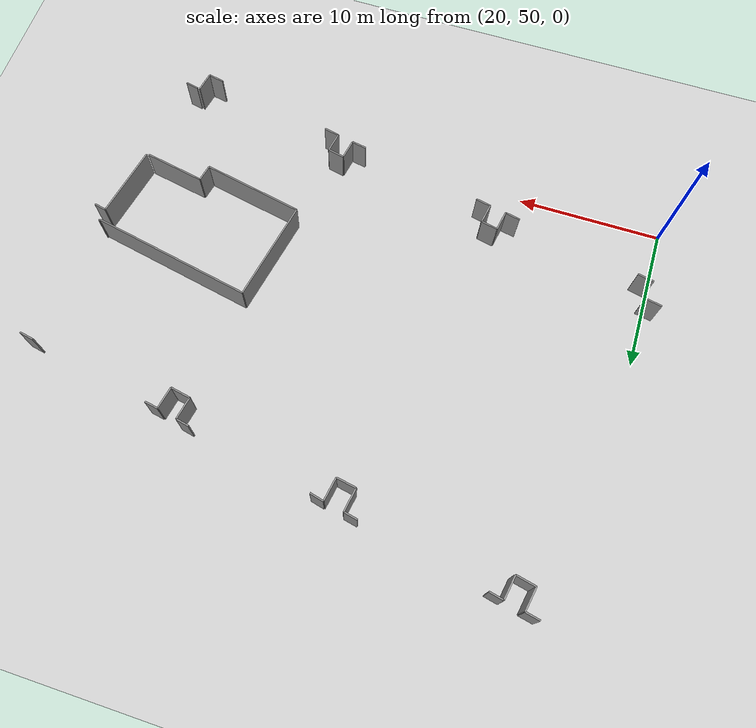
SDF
<sdf version="1.6">
 <world name="default">
  <model name="ground_plane">
   <static>1</static>
   <link name="link">
    <collision name="collision">
     <geometry><plane><normal>0 0 1</normal><size>100 100</size></plane></geometry>
     <surface><friction><ode><mu>100</mu><mu2>50</mu2></ode></friction></surface>
    </collision>
    <visual name="visual">
     <cast_shadows>0</cast_shadows>
     <geometry><plane><normal>0 0 1</normal><size>100 100</size></plane></geometry>
     <material>
      <script><uri>file://media/materials/scripts/gazebo.material</uri><name>Gazebo/Grey</name></script>
     </material>
    </visual>
   </link>
  </model>
  <model name="0510045926_A-40">
   <static>1</static>
   <link name="Wall_411">
    <collision name="Wall_411_Collision">
     <geometry><box><size>0.992644939321 0.1 2.5</size></box></geometry>
     <pose>0.49632246966 0 1.25 0 0 0</pose>
    </collision>
    <visual name="Wall_411_Visual">
     <pose>0.49632246966 0 1.25 0 0 0</pose>
     <geometry><box><size>0.992644939321 0.1 2.5</size></box></geometry>
     <material>
      <script><uri>file://media/materials/scripts/gazebo.material</uri><name>Gazebo/Grey</name></script>
      <ambient>1 1 1 1</ambient>
     </material>
    </visual>
    <pose>156.378568754 -23.0769055038 0 0 0 -0.202109667357</pose>
   </link>
   <link name="Wall_412">
    <collision name="Wall_412_Collision">
     <geometry><box><size>1.60071217649 0.1 2.5</size></box></geometry>
     <pose>0.800356088247 0 1.25 0 0 0</pose>
    </collision>
    <visual name="Wall_412_Visual">
     <pose>0.800356088247 0 1.25 0 0 0</pose>
     <geometry><box><size>1.60071217649 0.1 2.5</size></box></geometry>
     <material>
      <script><uri>file://media/materials/scripts/gazebo.material</uri><name>Gazebo/Grey</name></script>
      <ambient>1 1 1 1</ambient>
     </material>
    </visual>
    <pose>157.351008675 -23.2761655762 0 0 0 -1.76629482781</pose>
   </link>
   <link name="Wall_413">
    <collision name="Wall_413_Collision">
     <geometry><box><size>1.35465225649 0.1 2.5</size></box></geometry>
     <pose>0.677326128243 0 1.25 0 0 0</pose>
    </collision>
    <visual name="Wall_413_Visual">
     <pose>0.677326128243 0 1.25 0 0 0</pose>
     <geometry><box><size>1.35465225649 0.1 2.5</size></box></geometry>
     <material>
      <script><uri>file://media/materials/scripts/gazebo.material</uri><name>Gazebo/Grey</name></script>
      <ambient>1 1 1 1</ambient>
     </material>
    </visual>
    <pose>157.040061428 -24.8463857142 0 0 0 -0.206839988894</pose>
   </link>
   <link name="Wall_414">
    <collision name="Wall_414_Collision">
     <geometry><box><size>1.62342036655 0.1 2.5</size></box></geometry>
     <pose>0.811710183276 0 1.25 0 0 0</pose>
    </collision>
    <visual name="Wall_414_Visual">
     <pose>0.811710183276 0 1.25 0 0 0</pose>
     <geometry><box><size>1.62342036655 0.1 2.5</size></box></geometry>
     <material>
      <script><uri>file://media/materials/scripts/gazebo.material</uri><name>Gazebo/Grey</name></script>
      <ambient>1 1 1 1</ambient>
     </material>
    </visual>
    <pose>158.365838955 -25.1245883122 0 0 0 1.38204820549</pose>
   </link>
   <link name="Wall_415">
    <collision name="Wall_415_Collision">
     <geometry><box><size>0.966632656261 0.1 2.5</size></box></geometry>
     <pose>0.483316328131 0 1.25 0 0 0</pose>
    </collision>
    <visual name="Wall_415_Visual">
     <pose>0.483316328131 0 1.25 0 0 0</pose>
     <geometry><box><size>0.966632656261 0.1 2.5</size></box></geometry>
     <material>
      <script><uri>file://media/materials/scripts/gazebo.material</uri><name>Gazebo/Grey</name></script>
      <ambient>1 1 1 1</ambient>
     </material>
    </visual>
    <pose>158.670440339 -23.5300000635 0 0 0 -0.210579797944</pose>
   </link>
   <link name="Wall_416">
    <collision name="Wall_416_Collision">
     <geometry><box><size>0.954878142204 0.1 2.5</size></box></geometry>
     <pose>0.477439071102 0 1.25 0 0 0</pose>
    </collision>
    <visual name="Wall_416_Visual">
     <pose>0.477439071102 0 1.25 0 0 0</pose>
     <geometry><box><size>0.954878142204 0.1 2.5</size></box></geometry>
     <material>
      <script><uri>file://media/materials/scripts/gazebo.material</uri><name>Gazebo/Grey</name></script>
      <ambient>1 1 1 1</ambient>
     </material>
    </visual>
    <pose>168.151919941 -25.3505010058 0 0 0 -0.205059243814</pose>
   </link>
   <link name="Wall_417">
    <collision name="Wall_417_Collision">
     <geometry><box><size>1.62233889755 0.1 2.5</size></box></geometry>
     <pose>0.811169448775 0 1.25 0 0 0</pose>
    </collision>
    <visual name="Wall_417_Visual">
     <pose>0.811169448775 0 1.25 0 0 0</pose>
     <geometry><box><size>1.62233889755 0.1 2.5</size></box></geometry>
     <material>
      <script><uri>file://media/materials/scripts/gazebo.material</uri><name>Gazebo/Grey</name></script>
      <ambient>1 1 1 1</ambient>
     </material>
    </visual>
    <pose>169.086792357 -25.544938223 0 0 0 -1.74281288676</pose>
   </link>
   <link name="Wall_418">
    <collision name="Wall_418_Collision">
     <geometry><box><size>1.374783752 0.1 2.5</size></box></geometry>
     <pose>0.687391875998 0 1.25 0 0 0</pose>
    </collision>
    <visual name="Wall_418_Visual">
     <pose>0.687391875998 0 1.25 0 0 0</pose>
     <geometry><box><size>1.374783752 0.1 2.5</size></box></geometry>
     <material>
      <script><uri>file://media/materials/scripts/gazebo.material</uri><name>Gazebo/Grey</name></script>
      <ambient>1 1 1 1</ambient>
     </material>
    </visual>
    <pose>168.809097428 -27.1433339891 0 0 0 -0.183635292739</pose>
   </link>
   <link name="Wall_419">
    <collision name="Wall_419_Collision">
     <geometry><box><size>1.64255294442 0.1 2.5</size></box></geometry>
     <pose>0.821276472212 0 1.25 0 0 0</pose>
    </collision>
    <visual name="Wall_419_Visual">
     <pose>0.821276472212 0 1.25 0 0 0</pose>
     <geometry><box><size>1.64255294442 0.1 2.5</size></box></geometry>
     <material>
      <script><uri>file://media/materials/scripts/gazebo.material</uri><name>Gazebo/Grey</name></script>
      <ambient>1 1 1 1</ambient>
     </material>
    </visual>
    <pose>170.160766072 -27.3943762969 0 0 0 1.39479922211</pose>
   </link>
   <link name="Wall_420">
    <collision name="Wall_420_Collision">
     <geometry><box><size>0.967950615039 0.1 2.5</size></box></geometry>
     <pose>0.483975307519 0 1.25 0 0 0</pose>
    </collision>
    <visual name="Wall_420_Visual">
     <pose>0.483975307519 0 1.25 0 0 0</pose>
     <geometry><box><size>0.967950615039 0.1 2.5</size></box></geometry>
     <material>
      <script><uri>file://media/materials/scripts/gazebo.material</uri><name>Gazebo/Grey</name></script>
      <ambient>1 1 1 1</ambient>
     </material>
    </visual>
    <pose>170.448360547 -25.7771967788 0 0 0 -0.235565380558</pose>
   </link>
   <link name="Wall_421">
    <collision name="Wall_421_Collision">
     <geometry><box><size>0.922821727996 0.1 2.5</size></box></geometry>
     <pose>0.461410863998 0 1.25 0 0 0</pose>
    </collision>
    <visual name="Wall_421_Visual">
     <pose>0.461410863998 0 1.25 0 0 0</pose>
     <geometry><box><size>0.922821727996 0.1 2.5</size></box></geometry>
     <material>
      <script><uri>file://media/materials/scripts/gazebo.material</uri><name>Gazebo/Grey</name></script>
      <ambient>1 1 1 1</ambient>
     </material>
    </visual>
    <pose>179.954208259 -27.6593795016 0 0 0 -0.205541250105</pose>
   </link>
   <link name="Wall_422">
    <collision name="Wall_422_Collision">
     <geometry><box><size>1.57788303125 0.1 2.5</size></box></geometry>
     <pose>0.788941515624 0 1.25 0 0 0</pose>
    </collision>
    <visual name="Wall_422_Visual">
     <pose>0.788941515624 0 1.25 0 0 0</pose>
     <geometry><box><size>1.57788303125 0.1 2.5</size></box></geometry>
     <material>
      <script><uri>file://media/materials/scripts/gazebo.material</uri><name>Gazebo/Grey</name></script>
      <ambient>1 1 1 1</ambient>
     </material>
    </visual>
    <pose>180.857605199 -27.8477246911 0 0 0 -1.76276538766</pose>
   </link>
   <link name="Wall_423">
    <collision name="Wall_423_Collision">
     <geometry><box><size>1.40948128746 0.1 2.5</size></box></geometry>
     <pose>0.704740643728 0 1.25 0 0 0</pose>
    </collision>
    <visual name="Wall_423_Visual">
     <pose>0.704740643728 0 1.25 0 0 0</pose>
     <geometry><box><size>1.40948128746 0.1 2.5</size></box></geometry>
     <material>
      <script><uri>file://media/materials/scripts/gazebo.material</uri><name>Gazebo/Grey</name></script>
      <ambient>1 1 1 1</ambient>
     </material>
    </visual>
    <pose>180.556557497 -29.3966227321 0 0 0 -0.190790916014</pose>
   </link>
   <link name="Wall_424">
    <collision name="Wall_424_Collision">
     <geometry><box><size>1.5551884083 0.1 2.5</size></box></geometry>
     <pose>0.777594204148 0 1.25 0 0 0</pose>
    </collision>
    <visual name="Wall_424_Visual">
     <pose>0.777594204148 0 1.25 0 0 0</pose>
     <geometry><box><size>1.5551884083 0.1 2.5</size></box></geometry>
     <material>
      <script><uri>file://media/materials/scripts/gazebo.material</uri><name>Gazebo/Grey</name></script>
      <ambient>1 1 1 1</ambient>
     </material>
    </visual>
    <pose>181.940463121 -29.6639104472 0 0 0 1.37948263818</pose>
   </link>
   <link name="Wall_425">
    <collision name="Wall_425_Collision">
     <geometry><box><size>0.941468417479 0.1 2.5</size></box></geometry>
     <pose>0.47073420874 0 1.25 0 0 0</pose>
    </collision>
    <visual name="Wall_425_Visual">
     <pose>0.47073420874 0 1.25 0 0 0</pose>
     <geometry><box><size>0.941468417479 0.1 2.5</size></box></geometry>
     <material>
      <script><uri>file://media/materials/scripts/gazebo.material</uri><name>Gazebo/Grey</name></script>
      <ambient>1 1 1 1</ambient>
     </material>
    </visual>
    <pose>182.236180299 -28.1370960065 0 0 0 -0.17396937063</pose>
   </link>
   <link name="Wall_426">
    <collision name="Wall_426_Collision">
     <geometry><box><size>1.02880204275 0.1 2.5</size></box></geometry>
     <pose>0.514401021375 0 1.25 0 0 0</pose>
    </collision>
    <visual name="Wall_426_Visual">
     <pose>0.514401021375 0 1.25 0 0 0</pose>
     <geometry><box><size>1.02880204275 0.1 2.5</size></box></geometry>
     <material>
      <script><uri>file://media/materials/scripts/gazebo.material</uri><name>Gazebo/Grey</name></script>
      <ambient>1 1 1 1</ambient>
     </material>
    </visual>
    <pose>191.705983513 -29.9809497217 0 0 0 -0.190137388654</pose>
   </link>
   <link name="Wall_428">
    <collision name="Wall_428_Collision">
     <geometry><box><size>0.108502590026 0.1 2.5</size></box></geometry>
     <pose>0.0542512950131 0 1.25 0 0 0</pose>
    </collision>
    <visual name="Wall_428_Visual">
     <pose>0.0542512950131 0 1.25 0 0 0</pose>
     <geometry><box><size>0.108502590026 0.1 2.5</size></box></geometry>
     <material>
      <script><uri>file://media/materials/scripts/gazebo.material</uri><name>Gazebo/Grey</name></script>
      <ambient>1 1 1 1</ambient>
     </material>
    </visual>
    <pose>191.179023118 -39.3108901341 0 0 0 -1.74479092732</pose>
   </link>
   <link name="Wall_429">
    <collision name="Wall_429_Collision">
     <geometry><box><size>11.4461120356 0.1 2.5</size></box></geometry>
     <pose>5.7230560178 0 1.25 0 0 0</pose>
    </collision>
    <visual name="Wall_429_Visual">
     <pose>5.7230560178 0 1.25 0 0 0</pose>
     <geometry><box><size>11.4461120356 0.1 2.5</size></box></geometry>
     <material>
      <script><uri>file://media/materials/scripts/gazebo.material</uri><name>Gazebo/Grey</name></script>
      <ambient>1 1 1 1</ambient>
     </material>
    </visual>
    <pose>191.160239366 -39.4177544532 0 0 0 2.94852452718</pose>
   </link>
   <link name="Wall_430">
    <collision name="Wall_430_Collision">
     <geometry><box><size>7.15299297653 0.1 2.5</size></box></geometry>
     <pose>3.57649648826 0 1.25 0 0 0</pose>
    </collision>
    <visual name="Wall_430_Visual">
     <pose>3.57649648826 0 1.25 0 0 0</pose>
     <geometry><box><size>7.15299297653 0.1 2.5</size></box></geometry>
     <material>
      <script><uri>file://media/materials/scripts/gazebo.material</uri><name>Gazebo/Grey</name></script>
      <ambient>1 1 1 1</ambient>
     </material>
    </visual>
    <pose>179.926794134 -37.2215784698 0 0 0 -1.7642667356</pose>
   </link>
   <link name="Wall_431">
    <collision name="Wall_431_Collision">
     <geometry><box><size>7.13109601684 0.1 2.5</size></box></geometry>
     <pose>3.56554800842 0 1.25 0 0 0</pose>
    </collision>
    <visual name="Wall_431_Visual">
     <pose>3.56554800842 0 1.25 0 0 0</pose>
     <geometry><box><size>7.13109601684 0.1 2.5</size></box></geometry>
     <material>
      <script><uri>file://media/materials/scripts/gazebo.material</uri><name>Gazebo/Grey</name></script>
      <ambient>1 1 1 1</ambient>
     </material>
    </visual>
    <pose>178.551518882 -44.2411173794 0 0 0 -0.195559597962</pose>
   </link>
   <link name="Wall_432">
    <collision name="Wall_432_Collision">
     <geometry><box><size>1.17825802116 0.1 2.5</size></box></geometry>
     <pose>0.58912901058 0 1.25 0 0 0</pose>
    </collision>
    <visual name="Wall_432_Visual">
     <pose>0.58912901058 0 1.25 0 0 0</pose>
     <geometry><box><size>1.17825802116 0.1 2.5</size></box></geometry>
     <material>
      <script><uri>file://media/materials/scripts/gazebo.material</uri><name>Gazebo/Grey</name></script>
      <ambient>1 1 1 1</ambient>
     </material>
    </visual>
    <pose>185.546689681 -45.6267998452 0 0 0 1.36511973265</pose>
   </link>
   <link name="Wall_433">
    <collision name="Wall_433_Collision">
     <geometry><box><size>4.26510444168 0.1 2.5</size></box></geometry>
     <pose>2.13255222084 0 1.25 0 0 0</pose>
    </collision>
    <visual name="Wall_433_Visual">
     <pose>2.13255222084 0 1.25 0 0 0</pose>
     <geometry><box><size>4.26510444168 0.1 2.5</size></box></geometry>
     <material>
      <script><uri>file://media/materials/scripts/gazebo.material</uri><name>Gazebo/Grey</name></script>
      <ambient>1 1 1 1</ambient>
     </material>
    </visual>
    <pose>185.787324775 -44.4733759352 0 0 0 -0.186283868531</pose>
   </link>
   <link name="Wall_434">
    <collision name="Wall_434_Collision">
     <geometry><box><size>1.39507748237 0.1 2.5</size></box></geometry>
     <pose>0.697538741187 0 1.25 0 0 0</pose>
    </collision>
    <visual name="Wall_434_Visual">
     <pose>0.697538741187 0 1.25 0 0 0</pose>
     <geometry><box><size>1.39507748237 0.1 2.5</size></box></geometry>
     <material>
      <script><uri>file://media/materials/scripts/gazebo.material</uri><name>Gazebo/Grey</name></script>
      <ambient>1 1 1 1</ambient>
     </material>
    </visual>
    <pose>188.616817804 -51.6013021709 0 0 0 -1.76376713676</pose>
   </link>
   <link name="Wall_435">
    <collision name="Wall_435_Collision">
     <geometry><box><size>1.11745229697 0.1 2.5</size></box></geometry>
     <pose>0.558726148486 0 1.25 0 0 0</pose>
    </collision>
    <visual name="Wall_435_Visual">
     <pose>0.558726148486 0 1.25 0 0 0</pose>
     <geometry><box><size>1.11745229697 0.1 2.5</size></box></geometry>
     <material>
      <script><uri>file://media/materials/scripts/gazebo.material</uri><name>Gazebo/Grey</name></script>
      <ambient>1 1 1 1</ambient>
     </material>
    </visual>
    <pose>188.349276254 -52.970485395 0 0 0 2.95515629143</pose>
   </link>
   <link name="Wall_436">
    <collision name="Wall_436_Collision">
     <geometry><box><size>1.08276265599 0.1 2.5</size></box></geometry>
     <pose>0.541381327996 0 1.25 0 0 0</pose>
    </collision>
    <visual name="Wall_436_Visual">
     <pose>0.541381327996 0 1.25 0 0 0</pose>
     <geometry><box><size>1.08276265599 0.1 2.5</size></box></geometry>
     <material>
      <script><uri>file://media/materials/scripts/gazebo.material</uri><name>Gazebo/Grey</name></script>
      <ambient>1 1 1 1</ambient>
     </material>
    </visual>
    <pose>178.768293534 -51.1256163419 0 0 0 2.93739260106</pose>
   </link>
   <link name="Wall_437">
    <collision name="Wall_437_Collision">
     <geometry><box><size>1.40230413907 0.1 2.5</size></box></geometry>
     <pose>0.701152069537 0 1.25 0 0 0</pose>
    </collision>
    <visual name="Wall_437_Visual">
     <pose>0.701152069537 0 1.25 0 0 0</pose>
     <geometry><box><size>1.40230413907 0.1 2.5</size></box></geometry>
     <material>
      <script><uri>file://media/materials/scripts/gazebo.material</uri><name>Gazebo/Grey</name></script>
      <ambient>1 1 1 1</ambient>
     </material>
    </visual>
    <pose>177.708026881 -50.9060495104 0 0 0 1.38657144709</pose>
   </link>
   <link name="Wall_438">
    <collision name="Wall_438_Collision">
     <geometry><box><size>1.1732414525 0.1 2.5</size></box></geometry>
     <pose>0.58662072625 0 1.25 0 0 0</pose>
    </collision>
    <visual name="Wall_438_Visual">
     <pose>0.58662072625 0 1.25 0 0 0</pose>
     <geometry><box><size>1.1732414525 0.1 2.5</size></box></geometry>
     <material>
      <script><uri>file://media/materials/scripts/gazebo.material</uri><name>Gazebo/Grey</name></script>
      <ambient>1 1 1 1</ambient>
     </material>
    </visual>
    <pose>177.964907382 -49.5274744103 0 0 0 2.93104330774</pose>
   </link>
   <link name="Wall_439">
    <collision name="Wall_439_Collision">
     <geometry><box><size>1.39533558764 0.1 2.5</size></box></geometry>
     <pose>0.697667793819 0 1.25 0 0 0</pose>
    </collision>
    <visual name="Wall_439_Visual">
     <pose>0.697667793819 0 1.25 0 0 0</pose>
     <geometry><box><size>1.39533558764 0.1 2.5</size></box></geometry>
     <material>
      <script><uri>file://media/materials/scripts/gazebo.material</uri><name>Gazebo/Grey</name></script>
      <ambient>1 1 1 1</ambient>
     </material>
    </visual>
    <pose>176.8175755 -49.2822702957 0 0 0 -1.75798815915</pose>
   </link>
   <link name="Wall_440">
    <collision name="Wall_440_Collision">
     <geometry><box><size>1.0547535245 0.1 2.5</size></box></geometry>
     <pose>0.527376762249 0 1.25 0 0 0</pose>
    </collision>
    <visual name="Wall_440_Visual">
     <pose>0.527376762249 0 1.25 0 0 0</pose>
     <geometry><box><size>1.0547535245 0.1 2.5</size></box></geometry>
     <material>
      <script><uri>file://media/materials/scripts/gazebo.material</uri><name>Gazebo/Grey</name></script>
      <ambient>1 1 1 1</ambient>
     </material>
    </visual>
    <pose>176.557902819 -50.6532303611 0 0 0 2.9696389378</pose>
   </link>
   <link name="Wall_441">
    <collision name="Wall_441_Collision">
     <geometry><box><size>1.06757429079 0.1 2.5</size></box></geometry>
     <pose>0.533787145393 0 1.25 0 0 0</pose>
    </collision>
    <visual name="Wall_441_Visual">
     <pose>0.533787145393 0 1.25 0 0 0</pose>
     <geometry><box><size>1.06757429079 0.1 2.5</size></box></geometry>
     <material>
      <script><uri>file://media/materials/scripts/gazebo.material</uri><name>Gazebo/Grey</name></script>
      <ambient>1 1 1 1</ambient>
     </material>
    </visual>
    <pose>166.967528223 -48.8299372394 0 0 0 2.93808851969</pose>
   </link>
   <link name="Wall_442">
    <collision name="Wall_442_Collision">
     <geometry><box><size>1.38978684124 0.1 2.5</size></box></geometry>
     <pose>0.694893420622 0 1.25 0 0 0</pose>
    </collision>
    <visual name="Wall_442_Visual">
     <pose>0.694893420622 0 1.25 0 0 0</pose>
     <geometry><box><size>1.38978684124 0.1 2.5</size></box></geometry>
     <material>
      <script><uri>file://media/materials/scripts/gazebo.material</uri><name>Gazebo/Grey</name></script>
      <ambient>1 1 1 1</ambient>
     </material>
    </visual>
    <pose>165.92198397 -48.6141779253 0 0 0 1.38805133965</pose>
   </link>
   <link name="Wall_443">
    <collision name="Wall_443_Collision">
     <geometry><box><size>1.16609723475 0.1 2.5</size></box></geometry>
     <pose>0.583048617373 0 1.25 0 0 0</pose>
    </collision>
    <visual name="Wall_443_Visual">
     <pose>0.583048617373 0 1.25 0 0 0</pose>
     <geometry><box><size>1.16609723475 0.1 2.5</size></box></geometry>
     <material>
      <script><uri>file://media/materials/scripts/gazebo.material</uri><name>Gazebo/Grey</name></script>
      <ambient>1 1 1 1</ambient>
     </material>
    </visual>
    <pose>166.174549285 -47.2475330461 0 0 0 2.92951110328</pose>
   </link>
   <link name="Wall_444">
    <collision name="Wall_444_Collision">
     <geometry><box><size>1.41550441633 0.1 2.5</size></box></geometry>
     <pose>0.707752208166 0 1.25 0 0 0</pose>
    </collision>
    <visual name="Wall_444_Visual">
     <pose>0.707752208166 0 1.25 0 0 0</pose>
     <geometry><box><size>1.41550441633 0.1 2.5</size></box></geometry>
     <material>
      <script><uri>file://media/materials/scripts/gazebo.material</uri><name>Gazebo/Grey</name></script>
      <ambient>1 1 1 1</ambient>
     </material>
    </visual>
    <pose>165.034578603 -47.0020750969 0 0 0 -1.75018468796</pose>
   </link>
   <link name="Wall_445">
    <collision name="Wall_445_Collision">
     <geometry><box><size>1.06705657282 0.1 2.5</size></box></geometry>
     <pose>0.533528286409 0 1.25 0 0 0</pose>
    </collision>
    <visual name="Wall_445_Visual">
     <pose>0.533528286409 0 1.25 0 0 0</pose>
     <geometry><box><size>1.06705657282 0.1 2.5</size></box></geometry>
     <material>
      <script><uri>file://media/materials/scripts/gazebo.material</uri><name>Gazebo/Grey</name></script>
      <ambient>1 1 1 1</ambient>
     </material>
    </visual>
    <pose>164.782013288 -48.3948649283 0 0 0 2.94405713573</pose>
   </link>
   <link name="Wall_446">
    <collision name="Wall_446_Collision">
     <geometry><box><size>1.13601797763 0.1 2.5</size></box></geometry>
     <pose>0.568008988815 0 1.25 0 0 0</pose>
    </collision>
    <visual name="Wall_446_Visual">
     <pose>0.568008988815 0 1.25 0 0 0</pose>
     <geometry><box><size>1.13601797763 0.1 2.5</size></box></geometry>
     <material>
      <script><uri>file://media/materials/scripts/gazebo.material</uri><name>Gazebo/Grey</name></script>
      <ambient>1 1 1 1</ambient>
     </material>
    </visual>
    <pose>155.209407106 -46.564464441 0 0 0 2.93911387722</pose>
   </link>
   <link name="Wall_448">
    <collision name="Wall_448_Collision">
     <geometry><box><size>1.18386276835 0.1 2.5</size></box></geometry>
     <pose>0.591931384176 0 1.25 0 0 0</pose>
    </collision>
    <visual name="Wall_448_Visual">
     <pose>0.591931384176 0 1.25 0 0 0</pose>
     <geometry><box><size>1.18386276835 0.1 2.5</size></box></geometry>
     <material>
      <script><uri>file://media/materials/scripts/gazebo.material</uri><name>Gazebo/Grey</name></script>
      <ambient>1 1 1 1</ambient>
     </material>
    </visual>
    <pose>154.425820044 -44.9533769506 0 0 0 2.95504612139</pose>
   </link>
   <link name="Wall_525">
    <collision name="Wall_525_Collision">
     <geometry><box><size>0.937975000354 0.1 2.5</size></box></geometry>
     <pose>0.468987500177 0 1.25 0 0 0</pose>
    </collision>
    <visual name="Wall_525_Visual">
     <pose>0.468987500177 0 1.25 0 0 0</pose>
     <geometry><box><size>0.937975000354 0.1 2.5</size></box></geometry>
     <material>
      <script><uri>file://media/materials/scripts/gazebo.material</uri><name>Gazebo/Grey</name></script>
      <ambient>1 1 1 1</ambient>
     </material>
    </visual>
    <pose>189.689014678 -51.8216305058 0 0 0 2.91893171295</pose>
   </link>
   <link name="Wall_526">
    <collision name="Wall_526_Collision">
     <geometry><box><size>5.08992343039 0.1 2.5</size></box></geometry>
     <pose>2.5449617152 0 1.25 0 0 0</pose>
    </collision>
    <visual name="Wall_526_Visual">
     <pose>2.5449617152 0 1.25 0 0 0</pose>
     <geometry><box><size>5.08992343039 0.1 2.5</size></box></geometry>
     <material>
      <script><uri>file://media/materials/scripts/gazebo.material</uri><name>Gazebo/Grey</name></script>
      <ambient>1 1 1 1</ambient>
     </material>
    </visual>
    <pose>190.135001872 -45.2277720312 0 0 0 1.37551331588</pose>
   </link>
   <link name="Wall_527">
    <collision name="Wall_527_Collision">
     <geometry><box><size>0.854710926023 0.1 2.5</size></box></geometry>
     <pose>0.427355463012 0 1.25 0 0 0</pose>
    </collision>
    <visual name="Wall_527_Visual">
     <pose>0.427355463012 0 1.25 0 0 0</pose>
     <geometry><box><size>0.854710926023 0.1 2.5</size></box></geometry>
     <material>
      <script><uri>file://media/materials/scripts/gazebo.material</uri><name>Gazebo/Grey</name></script>
      <ambient>1 1 1 1</ambient>
     </material>
    </visual>
    <pose>191.122671862 -40.2345938331 0 0 0 -0.22005407577</pose>
   </link>
   <pose>-133.95 101.113233661 0 0 0 0</pose>
  </model>
 </world>
</sdf>
